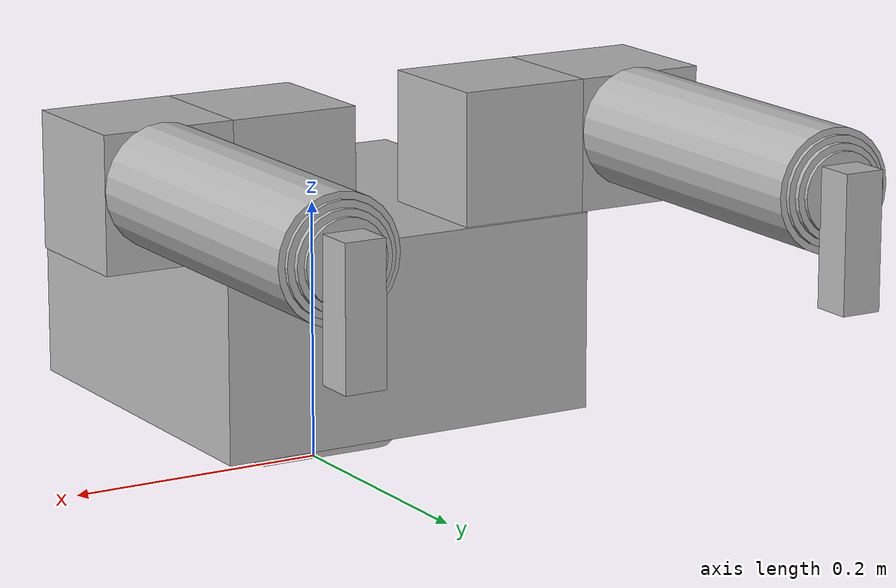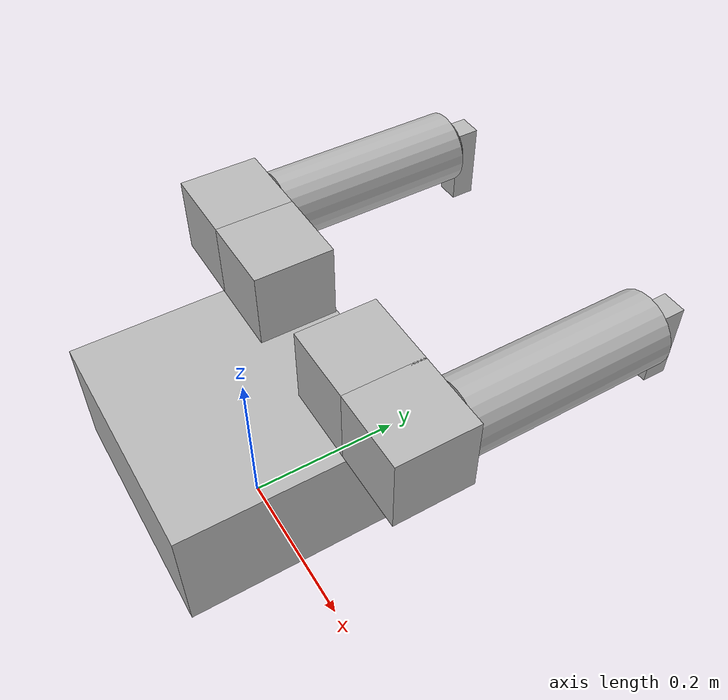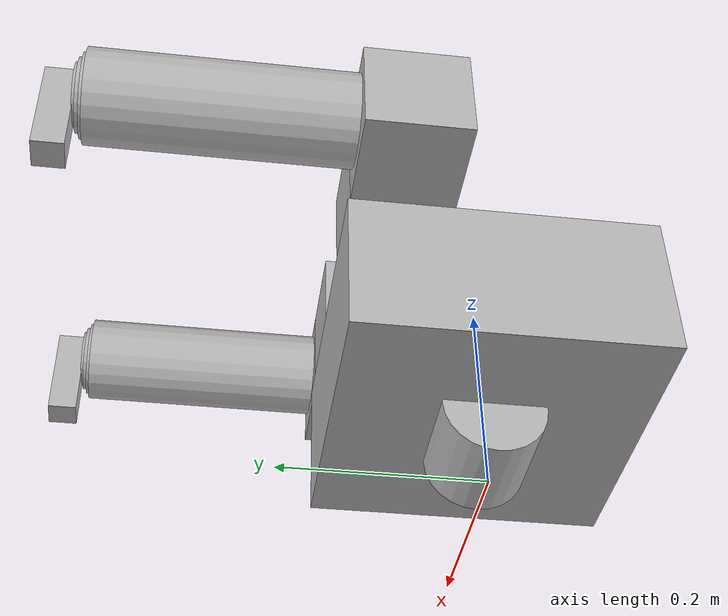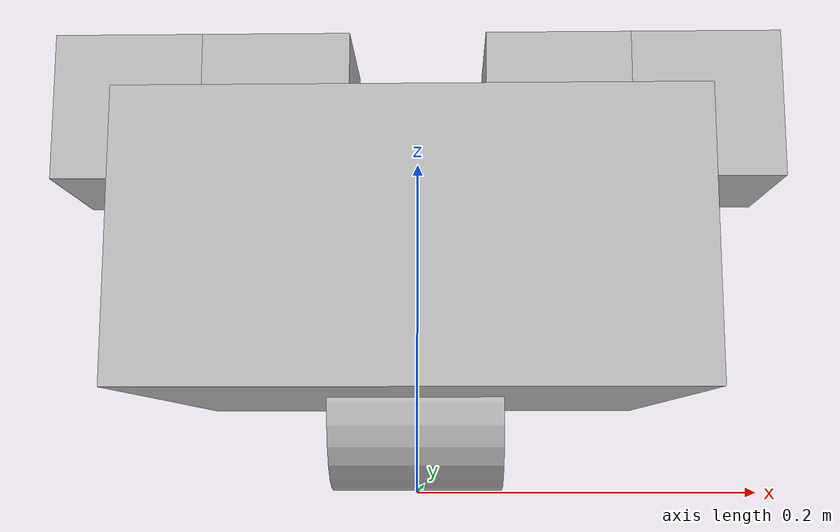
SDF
<sdf version="1.6">
<model name="robot" canonical_link='base_link'>
  <static>false</static>
  <pose relative_to='world'>0 0 0 0 0 0</pose>
  <link name="base_link">
    <pose relative_to='__model__'>0 0 0.1291011279735872 0 0 0</pose>
    <collision name='base_link collision'>
      <geometry>
        <box>
          <size>0.3 0.3 0.15</size>
        </box>
      </geometry>
    </collision>
    <visual name='base_link visual'>
      <geometry>
        <box>
          <size>0.3 0.3 0.15</size>
        </box>
      </geometry>
    </visual>
    <material>
      <script>
        <uri>file://media/materials/scripts/gazebo.material</uri>
        <name>Gazebo/Red</name>
      </script>
      <ambient>0.006048833020386069 0.9473065367320066 0.0069954101845983935 1</ambient>
      <diffuse>0.006048833020386069 0.9473065367320066 0.0069954101845983935 1</diffuse>
      <specular>0.1 0.1 0.1 1</specular>
      <emissive>0 0 0 1</emissive>
    </material>
    <inertial>
      <mass>1</mass>
      <inertia>
        <ixx>0.16666666666666666</ixx>
        <ixy>0</ixy>
        <ixz>0</ixz>
        <iyy>0.16666666666666666</iyy>
        <iyz>0</iyz>
        <izz>0.16666666666666666</izz>
      </inertia>
    </inertial>
  </link>
  <link name="cylinder1">
    <pose relative_to='base_link'>0 0 -0.0778799886783712 1.5707963267948966 2.220446049250313e-16 1.5707963267948963</pose>
    <collision name='cylinder1 collision'>
      <geometry>
        <cylinder>
          <radius>0.05</radius>
          <length>0.1</length>
        </cylinder>
      </geometry>
    </collision>
    <visual name='cylinder1 visual'>
      <geometry>
        <cylinder>
          <radius>0.05</radius>
          <length>0.1</length>
        </cylinder>
      </geometry>
    </visual>
    <material>
      <script>
        <uri>file://media/materials/scripts/gazebo.material</uri>
        <name>Gazebo/Red</name>
      </script>
      <ambient>0.10461648408208657 0.015996293361446288 0.514917665367466 1</ambient>
      <diffuse>0.10461648408208657 0.015996293361446288 0.514917665367466 1</diffuse>
      <specular>0.1 0.1 0.1 1</specular>
      <emissive>0 0 0 1</emissive>
    </material>
    <inertial>
      <mass>1</mass>
      <inertia>
        <ixx>0.3333333333333333</ixx>
        <ixy>0</ixy>
        <ixz>0</ixz>
        <iyy>0.5</iyy>
        <iyz>0</iyz>
        <izz>0.3333333333333333</izz>
      </inertia>
    </inertial>
  </link>
  <joint name="base_link_to_cylinder1" type="fixed">
    <pose relative_to='cylinder1'>0 0 0 0 0 0 </pose>
    <parent>base_link</parent>
    <child>cylinder1</child>
  </joint>
  <link name="cube3">
    <pose relative_to='base_link'>0.09490880780581268 0.09748329533451194 0.12520020382566865 0 0 0</pose>
    <collision name='cube3 collision'>
      <geometry>
        <box>
          <size>0.1 0.1 0.1</size>
        </box>
      </geometry>
    </collision>
    <visual name='cube3 visual'>
      <geometry>
        <box>
          <size>0.1 0.1 0.1</size>
        </box>
      </geometry>
    </visual>
    <material>
      <script>
        <uri>file://media/materials/scripts/gazebo.material</uri>
        <name>Gazebo/Red</name>
      </script>
      <ambient>0.08865558627723595 0.13563332964548108 0.5647115056965487 1</ambient>
      <diffuse>0.08865558627723595 0.13563332964548108 0.5647115056965487 1</diffuse>
      <specular>0.1 0.1 0.1 1</specular>
      <emissive>0 0 0 1</emissive>
    </material>
    <inertial>
      <mass>1</mass>
      <inertia>
        <ixx>0.16666666666666666</ixx>
        <ixy>0</ixy>
        <ixz>0</ixz>
        <iyy>0.16666666666666666</iyy>
        <iyz>0</iyz>
        <izz>0.16666666666666666</izz>
      </inertia>
    </inertial>
  </link>
  <joint name="base_link_to_cube3" type="revolute">
    <pose relative_to='cube3'>0 0 0 0 0 0 </pose>
    <parent>base_link</parent>
    <child>cube3</child>
    <axis>
        <xyz expressed_in='cube3'>0 0 1</xyz>
        <limit>            <lower>-1</lower>            <upper>1</upper>        </limit>
    </axis>
  </joint>
  <link name="cube3-copy3">
    <pose relative_to='cube3'>0.0977326868794024 0 0 0 1.5707963267948966 0</pose>
    <collision name='cube3-copy3 collision'>
      <geometry>
        <box>
          <size>0.1 0.1 0.1</size>
        </box>
      </geometry>
    </collision>
    <visual name='cube3-copy3 visual'>
      <geometry>
        <box>
          <size>0.1 0.1 0.1</size>
        </box>
      </geometry>
    </visual>
    <material>
      <script>
        <uri>file://media/materials/scripts/gazebo.material</uri>
        <name>Gazebo/Red</name>
      </script>
      <ambient>0.08865558627723595 0.13563332964548108 0.5647115056965487 1</ambient>
      <diffuse>0.08865558627723595 0.13563332964548108 0.5647115056965487 1</diffuse>
      <specular>0.1 0.1 0.1 1</specular>
      <emissive>0 0 0 1</emissive>
    </material>
    <inertial>
      <mass>1</mass>
      <inertia>
        <ixx>0.16666666666666666</ixx>
        <ixy>0</ixy>
        <ixz>0</ixz>
        <iyy>0.16666666666666666</iyy>
        <iyz>0</iyz>
        <izz>0.16666666666666666</izz>
      </inertia>
    </inertial>
  </link>
  <joint name="cube3_to_cube3-copy3" type="revolute">
    <pose relative_to='cube3-copy3'>0 0 0 0 0 0 </pose>
    <parent>cube3</parent>
    <child>cube3-copy3</child>
    <axis>
        <xyz expressed_in='cube3-copy3'>0 0 1</xyz>
        <limit>            <lower>-1</lower>            <upper>1</upper>        </limit>
    </axis>
  </joint>
  <link name="cylinder3-copy5">
    <pose relative_to='cube3-copy3'>-0.009420597854084972 0.17490331386129881 0.004821036014161992 -2.356194490192345 1.5707963267948966 -0.7853981633974483</pose>
    <collision name='cylinder3-copy5 collision'>
      <geometry>
        <cylinder>
          <radius>0.045</radius>
          <length>0.25</length>
        </cylinder>
      </geometry>
    </collision>
    <visual name='cylinder3-copy5 visual'>
      <geometry>
        <cylinder>
          <radius>0.045</radius>
          <length>0.25</length>
        </cylinder>
      </geometry>
    </visual>
    <material>
      <script>
        <uri>file://media/materials/scripts/gazebo.material</uri>
        <name>Gazebo/Red</name>
      </script>
      <ambient>0.6583748172725346 0.036889450395083165 0.012983032338510335 1</ambient>
      <diffuse>0.6583748172725346 0.036889450395083165 0.012983032338510335 1</diffuse>
      <specular>0.1 0.1 0.1 1</specular>
      <emissive>0 0 0 1</emissive>
    </material>
    <inertial>
      <mass>1</mass>
      <inertia>
        <ixx>0.3333333333333333</ixx>
        <ixy>0</ixy>
        <ixz>0</ixz>
        <iyy>0.5</iyy>
        <iyz>0</iyz>
        <izz>0.3333333333333333</izz>
      </inertia>
    </inertial>
  </link>
  <joint name="cube3-copy3_to_cylinder3-copy5" type="fixed">
    <pose relative_to='cylinder3-copy5'>-2.7755575615628914e-17 3.903127820947816e-17 1.3877787807814457e-17 0 0 0 </pose>
    <parent>cube3-copy3</parent>
    <child>cylinder3-copy5</child>
  </joint>
  <link name="cylinder3">
    <pose relative_to='cylinder3-copy5'>2.7028641463453882e-17 -4.336808689942018e-19 0.0032738203768583746 0 0 0</pose>
    <collision name='cylinder3 collision'>
      <geometry>
        <cylinder>
          <radius>0.04</radius>
          <length>0.25</length>
        </cylinder>
      </geometry>
    </collision>
    <visual name='cylinder3 visual'>
      <geometry>
        <cylinder>
          <radius>0.04</radius>
          <length>0.25</length>
        </cylinder>
      </geometry>
    </visual>
    <material>
      <script>
        <uri>file://media/materials/scripts/gazebo.material</uri>
        <name>Gazebo/Red</name>
      </script>
      <ambient>0.6583748172725346 0.036889450395083165 0.012983032338510335 1</ambient>
      <diffuse>0.6583748172725346 0.036889450395083165 0.012983032338510335 1</diffuse>
      <specular>0.1 0.1 0.1 1</specular>
      <emissive>0 0 0 1</emissive>
    </material>
    <inertial>
      <mass>1</mass>
      <inertia>
        <ixx>0.3333333333333333</ixx>
        <ixy>0</ixy>
        <ixz>0</ixz>
        <iyy>0.5</iyy>
        <iyz>0</iyz>
        <izz>0.3333333333333333</izz>
      </inertia>
    </inertial>
  </link>
  <joint name="cylinder3-copy5_to_cylinder3" type="prismatic">
    <pose relative_to='cylinder3'>-2.7755575615628914e-17 3.903127820947816e-17 1.3877787807814457e-17 0 0 0 </pose>
    <parent>cylinder3-copy5</parent>
    <child>cylinder3</child>
    <axis>
        <xyz expressed_in='cylinder3'>0 0 1</xyz>
    </axis>
  </joint>
  <link name="cylinder3-copy0">
    <pose relative_to='cylinder3'>2.6132612825465918e-17 -2.905661822261152e-17 0.004016047725078631 0 0 0</pose>
    <collision name='cylinder3-copy0 collision'>
      <geometry>
        <cylinder>
          <radius>0.035</radius>
          <length>0.25</length>
        </cylinder>
      </geometry>
    </collision>
    <visual name='cylinder3-copy0 visual'>
      <geometry>
        <cylinder>
          <radius>0.035</radius>
          <length>0.25</length>
        </cylinder>
      </geometry>
    </visual>
    <material>
      <script>
        <uri>file://media/materials/scripts/gazebo.material</uri>
        <name>Gazebo/Red</name>
      </script>
      <ambient>0.6583748172725346 0.036889450395083165 0.012983032338510335 1</ambient>
      <diffuse>0.6583748172725346 0.036889450395083165 0.012983032338510335 1</diffuse>
      <specular>0.1 0.1 0.1 1</specular>
      <emissive>0 0 0 1</emissive>
    </material>
    <inertial>
      <mass>1</mass>
      <inertia>
        <ixx>0.3333333333333333</ixx>
        <ixy>0</ixy>
        <ixz>0</ixz>
        <iyy>0.5</iyy>
        <iyz>0</iyz>
        <izz>0.3333333333333333</izz>
      </inertia>
    </inertial>
  </link>
  <joint name="cylinder3_to_cylinder3-copy0" type="prismatic">
    <pose relative_to='cylinder3-copy0'>0 0 0 0 0 0 </pose>
    <parent>cylinder3</parent>
    <child>cylinder3-copy0</child>
    <axis>
        <xyz expressed_in='cylinder3-copy0'>0 0 1</xyz>
    </axis>
  </joint>
  <link name="cylinder3-copy1">
    <pose relative_to='cylinder3-copy0'>-9.301005920151903e-19 -1.235990476633475e-17 0.003018064157115752 0 0 0</pose>
    <collision name='cylinder3-copy1 collision'>
      <geometry>
        <cylinder>
          <radius>0.03</radius>
          <length>0.25</length>
        </cylinder>
      </geometry>
    </collision>
    <visual name='cylinder3-copy1 visual'>
      <geometry>
        <cylinder>
          <radius>0.03</radius>
          <length>0.25</length>
        </cylinder>
      </geometry>
    </visual>
    <material>
      <script>
        <uri>file://media/materials/scripts/gazebo.material</uri>
        <name>Gazebo/Red</name>
      </script>
      <ambient>0.6583748172725346 0.036889450395083165 0.012983032338510335 1</ambient>
      <diffuse>0.6583748172725346 0.036889450395083165 0.012983032338510335 1</diffuse>
      <specular>0.1 0.1 0.1 1</specular>
      <emissive>0 0 0 1</emissive>
    </material>
    <inertial>
      <mass>1</mass>
      <inertia>
        <ixx>0.3333333333333333</ixx>
        <ixy>0</ixy>
        <ixz>0</ixz>
        <iyy>0.5</iyy>
        <iyz>0</iyz>
        <izz>0.3333333333333333</izz>
      </inertia>
    </inertial>
  </link>
  <joint name="cylinder3-copy0_to_cylinder3-copy1" type="prismatic">
    <pose relative_to='cylinder3-copy1'>0 0 0 0 0 0 </pose>
    <parent>cylinder3-copy0</parent>
    <child>cylinder3-copy1</child>
    <axis>
        <xyz expressed_in='cylinder3-copy1'>0 0 1</xyz>
    </axis>
  </joint>
  <link name="cube3-copy2">
    <pose relative_to='cylinder3-copy1'>-0.0031223829591222113 -0.028689304082221243 0.13915032059303187 -1.5707963267948963 0 0</pose>
    <collision name='cube3-copy2 collision'>
      <geometry>
        <box>
          <size>0.03 0.03 0.1</size>
        </box>
      </geometry>
    </collision>
    <visual name='cube3-copy2 visual'>
      <geometry>
        <box>
          <size>0.03 0.03 0.1</size>
        </box>
      </geometry>
    </visual>
    <material>
      <script>
        <uri>file://media/materials/scripts/gazebo.material</uri>
        <name>Gazebo/Red</name>
      </script>
      <ambient>0.08865558627723595 0.13563332964548108 0.5647115056965487 1</ambient>
      <diffuse>0.08865558627723595 0.13563332964548108 0.5647115056965487 1</diffuse>
      <specular>0.1 0.1 0.1 1</specular>
      <emissive>0 0 0 1</emissive>
    </material>
    <inertial>
      <mass>1</mass>
      <inertia>
        <ixx>0.16666666666666666</ixx>
        <ixy>0</ixy>
        <ixz>0</ixz>
        <iyy>0.16666666666666666</iyy>
        <iyz>0</iyz>
        <izz>0.16666666666666666</izz>
      </inertia>
    </inertial>
  </link>
  <joint name="cylinder3-copy1_to_cube3-copy2" type="fixed">
    <pose relative_to='cube3-copy2'>0 0 0 0 0 0 </pose>
    <parent>cylinder3-copy1</parent>
    <child>cube3-copy2</child>
  </joint>
  <link name="cube3-copy0">
    <pose relative_to='base_link'>-0.09726916492783255 0.09748329533451194 0.12520020382566865 0 0 0</pose>
    <collision name='cube3-copy0 collision'>
      <geometry>
        <box>
          <size>0.1 0.1 0.1</size>
        </box>
      </geometry>
    </collision>
    <visual name='cube3-copy0 visual'>
      <geometry>
        <box>
          <size>0.1 0.1 0.1</size>
        </box>
      </geometry>
    </visual>
    <material>
      <script>
        <uri>file://media/materials/scripts/gazebo.material</uri>
        <name>Gazebo/Red</name>
      </script>
      <ambient>0.08865558627723595 0.13563332964548108 0.5647115056965487 1</ambient>
      <diffuse>0.08865558627723595 0.13563332964548108 0.5647115056965487 1</diffuse>
      <specular>0.1 0.1 0.1 1</specular>
      <emissive>0 0 0 1</emissive>
    </material>
    <inertial>
      <mass>1</mass>
      <inertia>
        <ixx>0.16666666666666666</ixx>
        <ixy>0</ixy>
        <ixz>0</ixz>
        <iyy>0.16666666666666666</iyy>
        <iyz>0</iyz>
        <izz>0.16666666666666666</izz>
      </inertia>
    </inertial>
  </link>
  <joint name="base_link_to_cube3-copy0" type="revolute">
    <pose relative_to='cube3-copy0'>0 0 0 0 0 0 </pose>
    <parent>base_link</parent>
    <child>cube3-copy0</child>
    <axis>
        <xyz expressed_in='cube3-copy0'>0 0 1</xyz>
        <limit>            <lower>-1</lower>            <upper>1</upper>        </limit>
    </axis>
  </joint>
  <link name="cube3-copy4">
    <pose relative_to='cube3-copy0'>-0.09985074079374005 0 0 0 1.5707963267948966 0</pose>
    <collision name='cube3-copy4 collision'>
      <geometry>
        <box>
          <size>0.1 0.1 0.1</size>
        </box>
      </geometry>
    </collision>
    <visual name='cube3-copy4 visual'>
      <geometry>
        <box>
          <size>0.1 0.1 0.1</size>
        </box>
      </geometry>
    </visual>
    <material>
      <script>
        <uri>file://media/materials/scripts/gazebo.material</uri>
        <name>Gazebo/Red</name>
      </script>
      <ambient>0.08865558627723595 0.13563332964548108 0.5647115056965487 1</ambient>
      <diffuse>0.08865558627723595 0.13563332964548108 0.5647115056965487 1</diffuse>
      <specular>0.1 0.1 0.1 1</specular>
      <emissive>0 0 0 1</emissive>
    </material>
    <inertial>
      <mass>1</mass>
      <inertia>
        <ixx>0.16666666666666666</ixx>
        <ixy>0</ixy>
        <ixz>0</ixz>
        <iyy>0.16666666666666666</iyy>
        <iyz>0</iyz>
        <izz>0.16666666666666666</izz>
      </inertia>
    </inertial>
  </link>
  <joint name="cube3-copy0_to_cube3-copy4" type="revolute">
    <pose relative_to='cube3-copy4'>0 0 0 0 0 0 </pose>
    <parent>cube3-copy0</parent>
    <child>cube3-copy4</child>
    <axis>
        <xyz expressed_in='cube3-copy4'>0 0 1</xyz>
        <limit>            <lower>-1</lower>            <upper>1</upper>        </limit>
    </axis>
  </joint>
  <link name="cylinder3-copy6">
    <pose relative_to='cube3-copy4'>-0.009420597854084972 0.17490331386129881 0.004821036014161992 -2.356194490192345 1.5707963267948966 -0.7853981633974483</pose>
    <collision name='cylinder3-copy6 collision'>
      <geometry>
        <cylinder>
          <radius>0.045</radius>
          <length>0.25</length>
        </cylinder>
      </geometry>
    </collision>
    <visual name='cylinder3-copy6 visual'>
      <geometry>
        <cylinder>
          <radius>0.045</radius>
          <length>0.25</length>
        </cylinder>
      </geometry>
    </visual>
    <material>
      <script>
        <uri>file://media/materials/scripts/gazebo.material</uri>
        <name>Gazebo/Red</name>
      </script>
      <ambient>0.6583748172725346 0.036889450395083165 0.012983032338510335 1</ambient>
      <diffuse>0.6583748172725346 0.036889450395083165 0.012983032338510335 1</diffuse>
      <specular>0.1 0.1 0.1 1</specular>
      <emissive>0 0 0 1</emissive>
    </material>
    <inertial>
      <mass>1</mass>
      <inertia>
        <ixx>0.3333333333333333</ixx>
        <ixy>0</ixy>
        <ixz>0</ixz>
        <iyy>0.5</iyy>
        <iyz>0</iyz>
        <izz>0.3333333333333333</izz>
      </inertia>
    </inertial>
  </link>
  <joint name="cube3-copy4_to_cylinder3-copy6" type="fixed">
    <pose relative_to='cylinder3-copy6'>-2.7755575615628914e-17 3.903127820947816e-17 1.3877787807814457e-17 0 0 0 </pose>
    <parent>cube3-copy4</parent>
    <child>cylinder3-copy6</child>
  </joint>
  <link name="cylinder3-copy2">
    <pose relative_to='cylinder3-copy6'>2.7028641463453882e-17 -4.336808689942018e-19 0.0032738203768583746 0 0 0</pose>
    <collision name='cylinder3-copy2 collision'>
      <geometry>
        <cylinder>
          <radius>0.04</radius>
          <length>0.25</length>
        </cylinder>
      </geometry>
    </collision>
    <visual name='cylinder3-copy2 visual'>
      <geometry>
        <cylinder>
          <radius>0.04</radius>
          <length>0.25</length>
        </cylinder>
      </geometry>
    </visual>
    <material>
      <script>
        <uri>file://media/materials/scripts/gazebo.material</uri>
        <name>Gazebo/Red</name>
      </script>
      <ambient>0.6583748172725346 0.036889450395083165 0.012983032338510335 1</ambient>
      <diffuse>0.6583748172725346 0.036889450395083165 0.012983032338510335 1</diffuse>
      <specular>0.1 0.1 0.1 1</specular>
      <emissive>0 0 0 1</emissive>
    </material>
    <inertial>
      <mass>1</mass>
      <inertia>
        <ixx>0.3333333333333333</ixx>
        <ixy>0</ixy>
        <ixz>0</ixz>
        <iyy>0.5</iyy>
        <iyz>0</iyz>
        <izz>0.3333333333333333</izz>
      </inertia>
    </inertial>
  </link>
  <joint name="cylinder3-copy6_to_cylinder3-copy2" type="prismatic">
    <pose relative_to='cylinder3-copy2'>-2.7755575615628914e-17 3.903127820947816e-17 1.3877787807814457e-17 0 0 0 </pose>
    <parent>cylinder3-copy6</parent>
    <child>cylinder3-copy2</child>
    <axis>
        <xyz expressed_in='cylinder3-copy2'>0 0 1</xyz>
    </axis>
  </joint>
  <link name="cylinder3-copy3">
    <pose relative_to='cylinder3-copy2'>2.6132612825465918e-17 -2.905661822261152e-17 0.004016047725078631 0 0 0</pose>
    <collision name='cylinder3-copy3 collision'>
      <geometry>
        <cylinder>
          <radius>0.035</radius>
          <length>0.25</length>
        </cylinder>
      </geometry>
    </collision>
    <visual name='cylinder3-copy3 visual'>
      <geometry>
        <cylinder>
          <radius>0.035</radius>
          <length>0.25</length>
        </cylinder>
      </geometry>
    </visual>
    <material>
      <script>
        <uri>file://media/materials/scripts/gazebo.material</uri>
        <name>Gazebo/Red</name>
      </script>
      <ambient>0.6583748172725346 0.036889450395083165 0.012983032338510335 1</ambient>
      <diffuse>0.6583748172725346 0.036889450395083165 0.012983032338510335 1</diffuse>
      <specular>0.1 0.1 0.1 1</specular>
      <emissive>0 0 0 1</emissive>
    </material>
    <inertial>
      <mass>1</mass>
      <inertia>
        <ixx>0.3333333333333333</ixx>
        <ixy>0</ixy>
        <ixz>0</ixz>
        <iyy>0.5</iyy>
        <iyz>0</iyz>
        <izz>0.3333333333333333</izz>
      </inertia>
    </inertial>
  </link>
  <joint name="cylinder3-copy2_to_cylinder3-copy3" type="prismatic">
    <pose relative_to='cylinder3-copy3'>0 0 0 0 0 0 </pose>
    <parent>cylinder3-copy2</parent>
    <child>cylinder3-copy3</child>
    <axis>
        <xyz expressed_in='cylinder3-copy3'>0 0 1</xyz>
    </axis>
  </joint>
  <link name="cylinder3-copy4">
    <pose relative_to='cylinder3-copy3'>-9.301005920151903e-19 -1.235990476633475e-17 0.003018064157115752 0 0 0</pose>
    <collision name='cylinder3-copy4 collision'>
      <geometry>
        <cylinder>
          <radius>0.03</radius>
          <length>0.25</length>
        </cylinder>
      </geometry>
    </collision>
    <visual name='cylinder3-copy4 visual'>
      <geometry>
        <cylinder>
          <radius>0.03</radius>
          <length>0.25</length>
        </cylinder>
      </geometry>
    </visual>
    <material>
      <script>
        <uri>file://media/materials/scripts/gazebo.material</uri>
        <name>Gazebo/Red</name>
      </script>
      <ambient>0.6583748172725346 0.036889450395083165 0.012983032338510335 1</ambient>
      <diffuse>0.6583748172725346 0.036889450395083165 0.012983032338510335 1</diffuse>
      <specular>0.1 0.1 0.1 1</specular>
      <emissive>0 0 0 1</emissive>
    </material>
    <inertial>
      <mass>1</mass>
      <inertia>
        <ixx>0.3333333333333333</ixx>
        <ixy>0</ixy>
        <ixz>0</ixz>
        <iyy>0.5</iyy>
        <iyz>0</iyz>
        <izz>0.3333333333333333</izz>
      </inertia>
    </inertial>
  </link>
  <joint name="cylinder3-copy3_to_cylinder3-copy4" type="prismatic">
    <pose relative_to='cylinder3-copy4'>0 0 0 0 0 0 </pose>
    <parent>cylinder3-copy3</parent>
    <child>cylinder3-copy4</child>
    <axis>
        <xyz expressed_in='cylinder3-copy4'>0 0 1</xyz>
    </axis>
  </joint>
  <link name="cube3-copy5">
    <pose relative_to='cylinder3-copy4'>-0.0031223829591222113 -0.028689304082221243 0.13915032059303187 -1.5707963267948963 0 0</pose>
    <collision name='cube3-copy5 collision'>
      <geometry>
        <box>
          <size>0.03 0.03 0.1</size>
        </box>
      </geometry>
    </collision>
    <visual name='cube3-copy5 visual'>
      <geometry>
        <box>
          <size>0.03 0.03 0.1</size>
        </box>
      </geometry>
    </visual>
    <material>
      <script>
        <uri>file://media/materials/scripts/gazebo.material</uri>
        <name>Gazebo/Red</name>
      </script>
      <ambient>0.08865558627723595 0.13563332964548108 0.5647115056965487 1</ambient>
      <diffuse>0.08865558627723595 0.13563332964548108 0.5647115056965487 1</diffuse>
      <specular>0.1 0.1 0.1 1</specular>
      <emissive>0 0 0 1</emissive>
    </material>
    <inertial>
      <mass>1</mass>
      <inertia>
        <ixx>0.16666666666666666</ixx>
        <ixy>0</ixy>
        <ixz>0</ixz>
        <iyy>0.16666666666666666</iyy>
        <iyz>0</iyz>
        <izz>0.16666666666666666</izz>
      </inertia>
    </inertial>
  </link>
  <joint name="cylinder3-copy4_to_cube3-copy5" type="fixed">
    <pose relative_to='cube3-copy5'>0 0 0 0 0 0 </pose>
    <parent>cylinder3-copy4</parent>
    <child>cube3-copy5</child>
  </joint>
    <plugin name="joint_state_publisher" filename="libgazebo_ros_joint_state_publisher.so">
        <ros>
            <remapping>~/out:=/joint_states</remapping>
        </ros>
        <update_rate>5</update_rate>
       <joint_name>base_link_to_cube3</joint_name>
       <joint_name>cube3_to_cube3-copy3</joint_name>
       <joint_name>cylinder3-copy5_to_cylinder3</joint_name>
       <joint_name>cylinder3_to_cylinder3-copy0</joint_name>
       <joint_name>cylinder3-copy0_to_cylinder3-copy1</joint_name>
       <joint_name>base_link_to_cube3-copy0</joint_name>
       <joint_name>cube3-copy0_to_cube3-copy4</joint_name>
       <joint_name>cylinder3-copy6_to_cylinder3-copy2</joint_name>
       <joint_name>cylinder3-copy2_to_cylinder3-copy3</joint_name>
       <joint_name>cylinder3-copy3_to_cylinder3-copy4</joint_name>
    </plugin>
</model>
</sdf>
